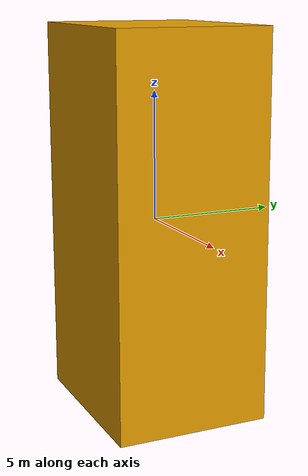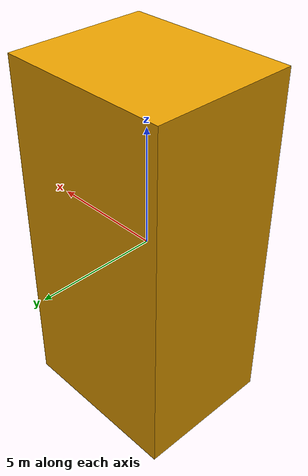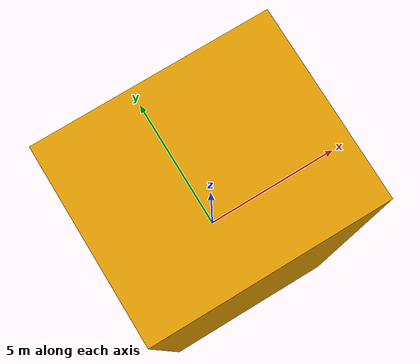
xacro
<?xml version="1.0"?>
<robot xmlns:xacro="http://www.ros.org/wiki/xacro" name="box">
  <xacro:arg name="name" default = "box" />
  <xacro:arg name="l" default = "1" />
  <xacro:arg name="w" default = "1"/>
  <xacro:arg name="h" default = "1" />
  <xacro:arg name="pattern" default=""/>
   <xacro:property name="path" value="/home/prasun/Downloads/Test-Aerialist/Aerialist/aerialist/resources/simulation/models/big_box/meshes/big_box_"/>
  <xacro:property name="extension" value=".dae"/>
  <link name="$(arg name)">
    <static>true</static>
    <collision>
      <geometry>
        <box size="$(arg l) $(arg w) $(arg h)"/>
      </geometry>
    </collision>
    <visual>
      <geometry>
        <mesh filename = "${path}$(arg pattern)${extension}" scale="6.0 6.0 10.0"/>
      </geometry>
    </visual>
    <inertial>
      <mass value="100"/>
      <inertia ixx="1088.0" ixy="0.0" ixz="0.0" iyy="550.0" iyz="0.0" izz="1088.0"/>
    </inertial>
  </link>
</robot>
